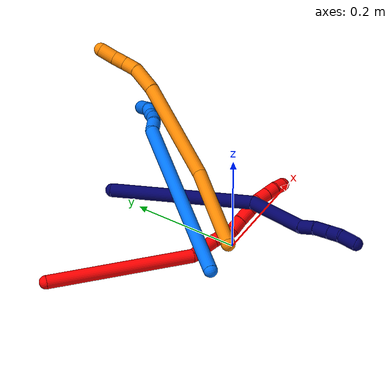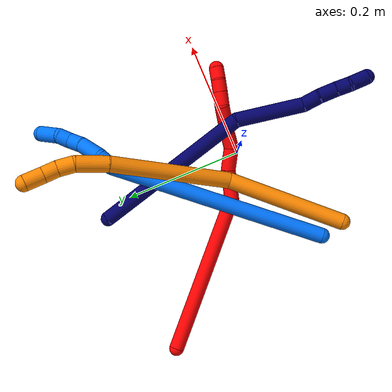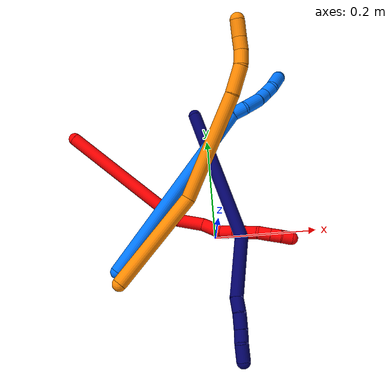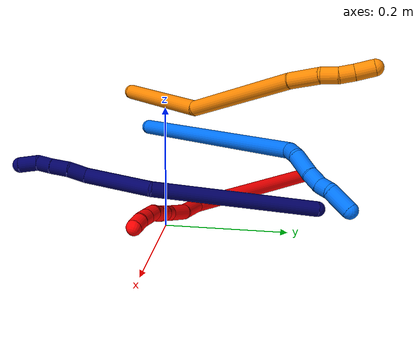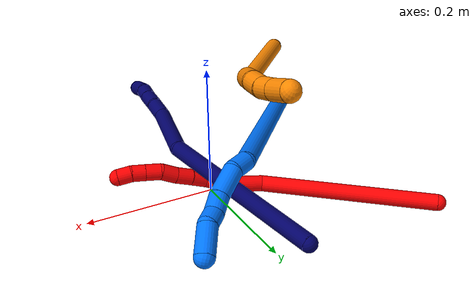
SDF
<sdf version="1.7">
 <world name="default">
  <model name="photoneo_s_sensor">
   <static>1</static>
   <pose>0 0 2 1.57079 1.57079 3.14159</pose>
   <link name="link">
    <inertial><mass>0.1</mass></inertial>
    <sensor name="sensor" type="depth">
     <update_rate>30</update_rate>
     <camera>
      <horizontal_fov>1.22</horizontal_fov>
      <image><width>1920</width><height>1200</height><format>B8G8R8</format></image>
      <clip><near>0.1</near><far>4</far></clip>
      <depth_camera><output>points</output></depth_camera>
     </camera>
     <plugin name="camera_plugin" filename="libgazebo_ros_depth_camera.so">
      <baseline>0.2</baseline>
      <alwaysOn>1</alwaysOn>
      <updateRate>0.0</updateRate>
      <cameraName>camera_ir</cameraName>
      <imageTopicName>/camera/color/image_raw</imageTopicName>
      <cameraInfoTopicName>/camera/color/camera_info</cameraInfoTopicName>
      <depthImageTopicName>/camera/depth/image_raw</depthImageTopicName>
      <depthImageCameraInfoTopicName>/camera/depth/camera_info</depthImageCameraInfoTopicName>
      <pointCloudTopicName>/camera/depth/points</pointCloudTopicName>
      <frameName>fr_optical</frameName>
      <pointCloudCutoff>0.1</pointCloudCutoff>
      <pointCloudCutoffMax>2.0</pointCloudCutoffMax>
      <distortionK1>0</distortionK1>
      <distortionK2>0</distortionK2>
      <distortionK3>0</distortionK3>
      <distortionT1>0</distortionT1>
      <distortionT2>0</distortionT2>
      <CxPrime>0</CxPrime>
      <Cx>0</Cx>
      <Cy>0</Cy>
      <focalLength>0</focalLength>
      <hackBaseline>0</hackBaseline>
     </plugin>
    </sensor>
   </link>
  </model>
  <model name="bin">
   <static>1</static>
   <link name="bottom">
    <collision name="collision-bottom">
     <pose>0 0 -0.01 0 -0 0</pose>
     <geometry><box><size>0.8 0.6 0.02</size></box></geometry>
     <surface>
      <friction><ode><mu>100</mu><mu2>100</mu2></ode></friction>
      <contact><collide_bitmask>65535</collide_bitmask></contact>
     </surface>
    </collision>
   </link>
   <link name="west_wall">
    <collision name="collision-west_wall">
     <pose>-0.41 0 0.1 0 -0 0</pose>
     <geometry><box><size>0.02 0.6 0.2</size></box></geometry>
     <surface>
      <friction><ode><mu>100</mu><mu2>100</mu2></ode></friction>
      <contact><collide_bitmask>65535</collide_bitmask></contact>
     </surface>
    </collision>
   </link>
   <link name="east_wall">
    <collision name="collision-east_wall">
     <pose>0.41 0 0.1 0 -0 0</pose>
     <geometry><box><size>0.02 0.6 0.2</size></box></geometry>
     <surface>
      <friction><ode><mu>100</mu><mu2>100</mu2></ode></friction>
      <contact><collide_bitmask>65535</collide_bitmask></contact>
     </surface>
    </collision>
   </link>
   <link name="south_wall">
    <collision name="collision-south_wall">
     <pose>0 -0.31 0.1 0 -0 0</pose>
     <geometry><box><size>0.8 0.02 0.2</size></box></geometry>
     <surface>
      <friction><ode><mu>100</mu><mu2>100</mu2></ode></friction>
      <contact><collide_bitmask>65535</collide_bitmask></contact>
     </surface>
    </collision>
   </link>
   <link name="north_wall">
    <collision name="collision-north_wall">
     <pose>0 0.31 0.1 0 -0 0</pose>
     <geometry><box><size>0.8 0.02 0.2</size></box></geometry>
     <surface>
      <friction><ode><mu>100</mu><mu2>100</mu2></ode></friction>
      <contact><collide_bitmask>65535</collide_bitmask></contact>
     </surface>
    </collision>
   </link>
  </model>
  <model name="2">
   <static>0</static>
   <link name="2">
    <collision name="collision-cylinder-e_1_1_4">
     <pose>0.047679 -0.09233 -0.086904 2.32593 0.359675 0.796586</pose>
     <geometry><cylinder><radius>0.0125</radius><length>0.270928</length></cylinder></geometry>
     <surface>
      <friction><ode><mu>1.16</mu><mu2>1.16</mu2><slip1>0</slip1><slip2>0</slip2></ode></friction>
      <contact><ode><kp>1e+06</kp><kd>1</kd><max_vel>0</max_vel><min_depth>0.001</min_depth></ode></contact>
     </surface>
    </collision>
    <visual name="visual-cylinder-e_1_1_4">
     <pose>0.047679 -0.09233 -0.086904 2.32593 0.359675 0.796586</pose>
     <geometry><cylinder><radius>0.0125</radius><length>0.270928</length></cylinder></geometry>
     <material><ambient>1 0 0 1</ambient></material>
    </visual>
    <collision name="collision-cylinder-e_2_4_5">
     <pose>0.112614 -0.193073 -0.190078 2.6644 0.755584 2.0419</pose>
     <geometry><cylinder><radius>0.0125</radius><length>0.050329</length></cylinder></geometry>
     <surface>
      <friction><ode><mu>1.16</mu><mu2>1.16</mu2><slip1>0</slip1><slip2>0</slip2></ode></friction>
      <contact><ode><kp>1e+06</kp><kd>1</kd><max_vel>0</max_vel><min_depth>0.001</min_depth></ode></contact>
     </surface>
    </collision>
    <visual name="visual-cylinder-e_2_4_5">
     <pose>0.112614 -0.193073 -0.190078 2.6644 0.755584 2.0419</pose>
     <geometry><cylinder><radius>0.0125</radius><length>0.050329</length></cylinder></geometry>
     <material><ambient>1 0 0 1</ambient></material>
    </visual>
    <collision name="collision-cylinder-e_3_5_6">
     <pose>0.142326 -0.212923 -0.216481 2.29581 0.683929 1.33835</pose>
     <geometry><cylinder><radius>0.0125</radius><length>0.039429</length></cylinder></geometry>
     <surface>
      <friction><ode><mu>1.16</mu><mu2>1.16</mu2><slip1>0</slip1><slip2>0</slip2></ode></friction>
      <contact><ode><kp>1e+06</kp><kd>1</kd><max_vel>0</max_vel><min_depth>0.001</min_depth></ode></contact>
     </surface>
    </collision>
    <visual name="visual-cylinder-e_3_5_6">
     <pose>0.142326 -0.212923 -0.216481 2.29581 0.683929 1.33835</pose>
     <geometry><cylinder><radius>0.0125</radius><length>0.039429</length></cylinder></geometry>
     <material><ambient>1 0 0 1</ambient></material>
    </visual>
    <collision name="collision-cylinder-e_4_6_7">
     <pose>0.165717 -0.227685 -0.231934 2.58296 1.04996 2.222</pose>
     <geometry><cylinder><radius>0.0125</radius><length>0.025211</length></cylinder></geometry>
     <surface>
      <friction><ode><mu>1.16</mu><mu2>1.16</mu2><slip1>0</slip1><slip2>0</slip2></ode></friction>
      <contact><ode><kp>1e+06</kp><kd>1</kd><max_vel>0</max_vel><min_depth>0.001</min_depth></ode></contact>
     </surface>
    </collision>
    <visual name="visual-cylinder-e_4_6_7">
     <pose>0.165717 -0.227685 -0.231934 2.58296 1.04996 2.222</pose>
     <geometry><cylinder><radius>0.0125</radius><length>0.025211</length></cylinder></geometry>
     <material><ambient>1 0 0 1</ambient></material>
    </visual>
    <collision name="collision-cylinder-e_5_7_8">
     <pose>0.187007 -0.234868 -0.243206 2.56662 0.97017 2.11915</pose>
     <geometry><cylinder><radius>0.0125</radius><length>0.025105</length></cylinder></geometry>
     <surface>
      <friction><ode><mu>1.16</mu><mu2>1.16</mu2><slip1>0</slip1><slip2>0</slip2></ode></friction>
      <contact><ode><kp>1e+06</kp><kd>1</kd><max_vel>0</max_vel><min_depth>0.001</min_depth></ode></contact>
     </surface>
    </collision>
    <visual name="visual-cylinder-e_5_7_8">
     <pose>0.187007 -0.234868 -0.243206 2.56662 0.97017 2.11915</pose>
     <geometry><cylinder><radius>0.0125</radius><length>0.025105</length></cylinder></geometry>
     <material><ambient>1 0 0 1</ambient></material>
    </visual>
    <collision name="collision-cylinder-e_6_8_9">
     <pose>0.208031 -0.242859 -0.253552 2.38653 1.05627 1.94764</pose>
     <geometry><cylinder><radius>0.0125</radius><length>0.024512</length></cylinder></geometry>
     <surface>
      <friction><ode><mu>1.16</mu><mu2>1.16</mu2><slip1>0</slip1><slip2>0</slip2></ode></friction>
      <contact><ode><kp>1e+06</kp><kd>1</kd><max_vel>0</max_vel><min_depth>0.001</min_depth></ode></contact>
     </surface>
    </collision>
    <visual name="visual-cylinder-e_6_8_9">
     <pose>0.208031 -0.242859 -0.253552 2.38653 1.05627 1.94764</pose>
     <geometry><cylinder><radius>0.0125</radius><length>0.024512</length></cylinder></geometry>
     <material><ambient>1 0 0 1</ambient></material>
    </visual>
    <collision name="collision-cylinder-e_7_9_10">
     <pose>0.226522 -0.250665 -0.265762 2.70253 0.735863 2.09218</pose>
     <geometry><cylinder><radius>0.0125</radius><length>0.023305</length></cylinder></geometry>
     <surface>
      <friction><ode><mu>1.16</mu><mu2>1.16</mu2><slip1>0</slip1><slip2>0</slip2></ode></friction>
      <contact><ode><kp>1e+06</kp><kd>1</kd><max_vel>0</max_vel><min_depth>0.001</min_depth></ode></contact>
     </surface>
    </collision>
    <visual name="visual-cylinder-e_7_9_10">
     <pose>0.226522 -0.250665 -0.265762 2.70253 0.735863 2.09218</pose>
     <geometry><cylinder><radius>0.0125</radius><length>0.023305</length></cylinder></geometry>
     <material><ambient>1 0 0 1</ambient></material>
    </visual>
    <collision name="collision-cylinder-e_8_10_11">
     <pose>0.24123 -0.257346 -0.280517 2.73222 0.738773 2.15722</pose>
     <geometry><cylinder><radius>0.0125</radius><length>0.020454</length></cylinder></geometry>
     <surface>
      <friction><ode><mu>1.16</mu><mu2>1.16</mu2><slip1>0</slip1><slip2>0</slip2></ode></friction>
      <contact><ode><kp>1e+06</kp><kd>1</kd><max_vel>0</max_vel><min_depth>0.001</min_depth></ode></contact>
     </surface>
    </collision>
    <visual name="visual-cylinder-e_8_10_11">
     <pose>0.24123 -0.257346 -0.280517 2.73222 0.738773 2.15722</pose>
     <geometry><cylinder><radius>0.0125</radius><length>0.020454</length></cylinder></geometry>
     <material><ambient>1 0 0 1</ambient></material>
    </visual>
    <collision name="collision-cylinder-e_9_11_2">
     <pose>0.253608 -0.262601 -0.29595 2.88318 0.558485 2.29066</pose>
     <geometry><cylinder><radius>0.0125</radius><length>0.020727</length></cylinder></geometry>
     <surface>
      <friction><ode><mu>1.16</mu><mu2>1.16</mu2><slip1>0</slip1><slip2>0</slip2></ode></friction>
      <contact><ode><kp>1e+06</kp><kd>1</kd><max_vel>0</max_vel><min_depth>0.001</min_depth></ode></contact>
     </surface>
    </collision>
    <visual name="visual-cylinder-e_9_11_2">
     <pose>0.253608 -0.262601 -0.29595 2.88318 0.558485 2.29066</pose>
     <geometry><cylinder><radius>0.0125</radius><length>0.020727</length></cylinder></geometry>
     <material><ambient>1 0 0 1</ambient></material>
    </visual>
    <collision name="collision-sphere-2">
     <pose>0.2591 -0.264847 -0.304447 0 -0 0</pose>
     <geometry><sphere><radius>0.0125</radius></sphere></geometry>
     <surface>
      <friction><ode><mu>1.16</mu><mu2>1.16</mu2><slip1>0</slip1><slip2>0</slip2></ode></friction>
      <contact><ode><kp>1e+06</kp><kd>1</kd><max_vel>0</max_vel><min_depth>0.001</min_depth></ode></contact>
     </surface>
    </collision>
    <visual name="visual-sphere-2">
     <pose>0.2591 -0.264847 -0.304447 0 -0 0</pose>
     <geometry><sphere><radius>0.0125</radius></sphere></geometry>
     <material><ambient>1 0 0 1</ambient></material>
    </visual>
    <collision name="collision-sphere-11">
     <pose>0.248117 -0.260355 -0.287453 0 -0 0</pose>
     <geometry><sphere><radius>0.0125</radius></sphere></geometry>
     <surface>
      <friction><ode><mu>1.16</mu><mu2>1.16</mu2><slip1>0</slip1><slip2>0</slip2></ode></friction>
      <contact><ode><kp>1e+06</kp><kd>1</kd><max_vel>0</max_vel><min_depth>0.001</min_depth></ode></contact>
     </surface>
    </collision>
    <visual name="visual-sphere-11">
     <pose>0.248117 -0.260355 -0.287453 0 -0 0</pose>
     <geometry><sphere><radius>0.0125</radius></sphere></geometry>
     <material><ambient>1 0 0 1</ambient></material>
    </visual>
    <collision name="collision-sphere-10">
     <pose>0.234343 -0.254336 -0.273581 0 -0 0</pose>
     <geometry><sphere><radius>0.0125</radius></sphere></geometry>
     <surface>
      <friction><ode><mu>1.16</mu><mu2>1.16</mu2><slip1>0</slip1><slip2>0</slip2></ode></friction>
      <contact><ode><kp>1e+06</kp><kd>1</kd><max_vel>0</max_vel><min_depth>0.001</min_depth></ode></contact>
     </surface>
    </collision>
    <visual name="visual-sphere-10">
     <pose>0.234343 -0.254336 -0.273581 0 -0 0</pose>
     <geometry><sphere><radius>0.0125</radius></sphere></geometry>
     <material><ambient>1 0 0 1</ambient></material>
    </visual>
    <collision name="collision-sphere-9">
     <pose>0.2187 -0.246993 -0.257944 0 -0 0</pose>
     <geometry><sphere><radius>0.0125</radius></sphere></geometry>
     <surface>
      <friction><ode><mu>1.16</mu><mu2>1.16</mu2><slip1>0</slip1><slip2>0</slip2></ode></friction>
      <contact><ode><kp>1e+06</kp><kd>1</kd><max_vel>0</max_vel><min_depth>0.001</min_depth></ode></contact>
     </surface>
    </collision>
    <visual name="visual-sphere-9">
     <pose>0.2187 -0.246993 -0.257944 0 -0 0</pose>
     <geometry><sphere><radius>0.0125</radius></sphere></geometry>
     <material><ambient>1 0 0 1</ambient></material>
    </visual>
    <collision name="collision-sphere-4">
     <pose>0.095359 -0.184661 -0.173808 0 -0 0</pose>
     <geometry><sphere><radius>0.0125</radius></sphere></geometry>
     <surface>
      <friction><ode><mu>1.16</mu><mu2>1.16</mu2><slip1>0</slip1><slip2>0</slip2></ode></friction>
      <contact><ode><kp>1e+06</kp><kd>1</kd><max_vel>0</max_vel><min_depth>0.001</min_depth></ode></contact>
     </surface>
    </collision>
    <visual name="visual-sphere-4">
     <pose>0.095359 -0.184661 -0.173808 0 -0 0</pose>
     <geometry><sphere><radius>0.0125</radius></sphere></geometry>
     <material><ambient>1 0 0 1</ambient></material>
    </visual>
    <collision name="collision-sphere-1">
     <geometry><sphere><radius>0.0125</radius></sphere></geometry>
     <surface>
      <friction><ode><mu>1.16</mu><mu2>1.16</mu2><slip1>0</slip1><slip2>0</slip2></ode></friction>
      <contact><ode><kp>1e+06</kp><kd>1</kd><max_vel>0</max_vel><min_depth>0.001</min_depth></ode></contact>
     </surface>
    </collision>
    <visual name="visual-sphere-1">
     <geometry><sphere><radius>0.0125</radius></sphere></geometry>
     <material><ambient>1 0 0 1</ambient></material>
    </visual>
    <collision name="collision-sphere-8">
     <pose>0.197362 -0.238726 -0.24916 0 -0 0</pose>
     <geometry><sphere><radius>0.0125</radius></sphere></geometry>
     <surface>
      <friction><ode><mu>1.16</mu><mu2>1.16</mu2><slip1>0</slip1><slip2>0</slip2></ode></friction>
      <contact><ode><kp>1e+06</kp><kd>1</kd><max_vel>0</max_vel><min_depth>0.001</min_depth></ode></contact>
     </surface>
    </collision>
    <visual name="visual-sphere-8">
     <pose>0.197362 -0.238726 -0.24916 0 -0 0</pose>
     <geometry><sphere><radius>0.0125</radius></sphere></geometry>
     <material><ambient>1 0 0 1</ambient></material>
    </visual>
    <collision name="collision-sphere-5">
     <pose>0.12987 -0.201486 -0.206348 0 -0 0</pose>
     <geometry><sphere><radius>0.0125</radius></sphere></geometry>
     <surface>
      <friction><ode><mu>1.16</mu><mu2>1.16</mu2><slip1>0</slip1><slip2>0</slip2></ode></friction>
      <contact><ode><kp>1e+06</kp><kd>1</kd><max_vel>0</max_vel><min_depth>0.001</min_depth></ode></contact>
     </surface>
    </collision>
    <visual name="visual-sphere-5">
     <pose>0.12987 -0.201486 -0.206348 0 -0 0</pose>
     <geometry><sphere><radius>0.0125</radius></sphere></geometry>
     <material><ambient>1 0 0 1</ambient></material>
    </visual>
    <collision name="collision-sphere-6">
     <pose>0.154783 -0.224361 -0.226615 0 -0 0</pose>
     <geometry><sphere><radius>0.0125</radius></sphere></geometry>
     <surface>
      <friction><ode><mu>1.16</mu><mu2>1.16</mu2><slip1>0</slip1><slip2>0</slip2></ode></friction>
      <contact><ode><kp>1e+06</kp><kd>1</kd><max_vel>0</max_vel><min_depth>0.001</min_depth></ode></contact>
     </surface>
    </collision>
    <visual name="visual-sphere-6">
     <pose>0.154783 -0.224361 -0.226615 0 -0 0</pose>
     <geometry><sphere><radius>0.0125</radius></sphere></geometry>
     <material><ambient>1 0 0 1</ambient></material>
    </visual>
    <collision name="collision-sphere-7">
     <pose>0.176651 -0.23101 -0.237253 0 -0 0</pose>
     <geometry><sphere><radius>0.0125</radius></sphere></geometry>
     <surface>
      <friction><ode><mu>1.16</mu><mu2>1.16</mu2><slip1>0</slip1><slip2>0</slip2></ode></friction>
      <contact><ode><kp>1e+06</kp><kd>1</kd><max_vel>0</max_vel><min_depth>0.001</min_depth></ode></contact>
     </surface>
    </collision>
    <visual name="visual-sphere-7">
     <pose>0.176651 -0.23101 -0.237253 0 -0 0</pose>
     <geometry><sphere><radius>0.0125</radius></sphere></geometry>
     <material><ambient>1 0 0 1</ambient></material>
    </visual>
    <inertial>
     <pose>0.107278 -0.154531 -0.155761 0 -0 0</pose>
     <mass>0.5</mass>
     <inertia>
      <ixx>0.00224</ixx>
      <ixy>0</ixy>
      <ixz>0</ixz>
      <iyy>0.000641</iyy>
      <iyz>0</iyz>
      <izz>0.000516</izz>
     </inertia>
    </inertial>
   </link>
   <pose>-0.268617 0.224963 0.013084 -0.43029 -0.694621 0.33839</pose>
  </model>
  <model name="7">
   <static>0</static>
   <link name="7">
    <collision name="collision-cylinder-e_1_1_4">
     <pose>-0.003607 -0.127611 -0.048316 1.93274 -0.026429 -0.038263</pose>
     <geometry><cylinder><radius>0.0125</radius><length>0.272999</length></cylinder></geometry>
     <surface>
      <friction><ode><mu>1.16</mu><mu2>1.16</mu2><slip1>0</slip1><slip2>0</slip2></ode></friction>
      <contact><ode><kp>1e+06</kp><kd>1</kd><max_vel>0</max_vel><min_depth>0.001</min_depth></ode></contact>
     </surface>
    </collision>
    <visual name="visual-cylinder-e_1_1_4">
     <pose>-0.003607 -0.127611 -0.048316 1.93274 -0.026429 -0.038263</pose>
     <geometry><cylinder><radius>0.0125</radius><length>0.272999</length></cylinder></geometry>
     <material><ambient>0.003922 0 0.403922 1</ambient></material>
    </visual>
    <collision name="collision-cylinder-e_2_4_5">
     <pose>0.011721 -0.308112 -0.103712 1.70388 0.340986 0.388533</pose>
     <geometry><cylinder><radius>0.0125</radius><length>0.113241</length></cylinder></geometry>
     <surface>
      <friction><ode><mu>1.16</mu><mu2>1.16</mu2><slip1>0</slip1><slip2>0</slip2></ode></friction>
      <contact><ode><kp>1e+06</kp><kd>1</kd><max_vel>0</max_vel><min_depth>0.001</min_depth></ode></contact>
     </surface>
    </collision>
    <visual name="visual-cylinder-e_2_4_5">
     <pose>0.011721 -0.308112 -0.103712 1.70388 0.340986 0.388533</pose>
     <geometry><cylinder><radius>0.0125</radius><length>0.113241</length></cylinder></geometry>
     <material><ambient>0.003922 0 0.403922 1</ambient></material>
    </visual>
    <collision name="collision-cylinder-e_3_5_6">
     <pose>0.033586 -0.37424 -0.117072 2.01369 0.197365 0.310554</pose>
     <geometry><cylinder><radius>0.0125</radius><length>0.029886</length></cylinder></geometry>
     <surface>
      <friction><ode><mu>1.16</mu><mu2>1.16</mu2><slip1>0</slip1><slip2>0</slip2></ode></friction>
      <contact><ode><kp>1e+06</kp><kd>1</kd><max_vel>0</max_vel><min_depth>0.001</min_depth></ode></contact>
     </surface>
    </collision>
    <visual name="visual-cylinder-e_3_5_6">
     <pose>0.033586 -0.37424 -0.117072 2.01369 0.197365 0.310554</pose>
     <geometry><cylinder><radius>0.0125</radius><length>0.029886</length></cylinder></geometry>
     <material><ambient>0.003922 0 0.403922 1</ambient></material>
    </visual>
    <collision name="collision-cylinder-e_4_6_7">
     <pose>0.039547 -0.401564 -0.126826 1.81262 0.205966 0.26236</pose>
     <geometry><cylinder><radius>0.0125</radius><length>0.02964</length></cylinder></geometry>
     <surface>
      <friction><ode><mu>1.16</mu><mu2>1.16</mu2><slip1>0</slip1><slip2>0</slip2></ode></friction>
      <contact><ode><kp>1e+06</kp><kd>1</kd><max_vel>0</max_vel><min_depth>0.001</min_depth></ode></contact>
     </surface>
    </collision>
    <visual name="visual-cylinder-e_4_6_7">
     <pose>0.039547 -0.401564 -0.126826 1.81262 0.205966 0.26236</pose>
     <geometry><cylinder><radius>0.0125</radius><length>0.02964</length></cylinder></geometry>
     <material><ambient>0.003922 0 0.403922 1</ambient></material>
    </visual>
    <collision name="collision-cylinder-e_5_7_8">
     <pose>0.045604 -0.426234 -0.133173 1.83582 0.269236 0.350558</pose>
     <geometry><cylinder><radius>0.0125</radius><length>0.022758</length></cylinder></geometry>
     <surface>
      <friction><ode><mu>1.16</mu><mu2>1.16</mu2><slip1>0</slip1><slip2>0</slip2></ode></friction>
      <contact><ode><kp>1e+06</kp><kd>1</kd><max_vel>0</max_vel><min_depth>0.001</min_depth></ode></contact>
     </surface>
    </collision>
    <visual name="visual-cylinder-e_5_7_8">
     <pose>0.045604 -0.426234 -0.133173 1.83582 0.269236 0.350558</pose>
     <geometry><cylinder><radius>0.0125</radius><length>0.022758</length></cylinder></geometry>
     <material><ambient>0.003922 0 0.403922 1</ambient></material>
    </visual>
    <collision name="collision-cylinder-e_6_8_2">
     <pose>0.049389 -0.452537 -0.135764 1.55285 0.048173 0.047316</pose>
     <geometry><cylinder><radius>0.0125</radius><length>0.031476</length></cylinder></geometry>
     <surface>
      <friction><ode><mu>1.16</mu><mu2>1.16</mu2><slip1>0</slip1><slip2>0</slip2></ode></friction>
      <contact><ode><kp>1e+06</kp><kd>1</kd><max_vel>0</max_vel><min_depth>0.001</min_depth></ode></contact>
     </surface>
    </collision>
    <visual name="visual-cylinder-e_6_8_2">
     <pose>0.049389 -0.452537 -0.135764 1.55285 0.048173 0.047316</pose>
     <geometry><cylinder><radius>0.0125</radius><length>0.031476</length></cylinder></geometry>
     <material><ambient>0.003922 0 0.403922 1</ambient></material>
    </visual>
    <collision name="collision-sphere-2">
     <pose>0.050147 -0.468254 -0.135482 0 -0 0</pose>
     <geometry><sphere><radius>0.0125</radius></sphere></geometry>
     <surface>
      <friction><ode><mu>1.16</mu><mu2>1.16</mu2><slip1>0</slip1><slip2>0</slip2></ode></friction>
      <contact><ode><kp>1e+06</kp><kd>1</kd><max_vel>0</max_vel><min_depth>0.001</min_depth></ode></contact>
     </surface>
    </collision>
    <visual name="visual-sphere-2">
     <pose>0.050147 -0.468254 -0.135482 0 -0 0</pose>
     <geometry><sphere><radius>0.0125</radius></sphere></geometry>
     <material><ambient>0.003922 0 0.403922 1</ambient></material>
    </visual>
    <collision name="collision-sphere-4">
     <pose>-0.007214 -0.255223 -0.096632 0 -0 0</pose>
     <geometry><sphere><radius>0.0125</radius></sphere></geometry>
     <surface>
      <friction><ode><mu>1.16</mu><mu2>1.16</mu2><slip1>0</slip1><slip2>0</slip2></ode></friction>
      <contact><ode><kp>1e+06</kp><kd>1</kd><max_vel>0</max_vel><min_depth>0.001</min_depth></ode></contact>
     </surface>
    </collision>
    <visual name="visual-sphere-4">
     <pose>-0.007214 -0.255223 -0.096632 0 -0 0</pose>
     <geometry><sphere><radius>0.0125</radius></sphere></geometry>
     <material><ambient>0.003922 0 0.403922 1</ambient></material>
    </visual>
    <collision name="collision-sphere-1">
     <geometry><sphere><radius>0.0125</radius></sphere></geometry>
     <surface>
      <friction><ode><mu>1.16</mu><mu2>1.16</mu2><slip1>0</slip1><slip2>0</slip2></ode></friction>
      <contact><ode><kp>1e+06</kp><kd>1</kd><max_vel>0</max_vel><min_depth>0.001</min_depth></ode></contact>
     </surface>
    </collision>
    <visual name="visual-sphere-1">
     <geometry><sphere><radius>0.0125</radius></sphere></geometry>
     <material><ambient>0.003922 0 0.403922 1</ambient></material>
    </visual>
    <collision name="collision-sphere-8">
     <pose>0.048631 -0.43682 -0.136047 0 -0 0</pose>
     <geometry><sphere><radius>0.0125</radius></sphere></geometry>
     <surface>
      <friction><ode><mu>1.16</mu><mu2>1.16</mu2><slip1>0</slip1><slip2>0</slip2></ode></friction>
      <contact><ode><kp>1e+06</kp><kd>1</kd><max_vel>0</max_vel><min_depth>0.001</min_depth></ode></contact>
     </surface>
    </collision>
    <visual name="visual-sphere-8">
     <pose>0.048631 -0.43682 -0.136047 0 -0 0</pose>
     <geometry><sphere><radius>0.0125</radius></sphere></geometry>
     <material><ambient>0.003922 0 0.403922 1</ambient></material>
    </visual>
    <collision name="collision-sphere-5">
     <pose>0.030656 -0.361001 -0.110793 0 -0 0</pose>
     <geometry><sphere><radius>0.0125</radius></sphere></geometry>
     <surface>
      <friction><ode><mu>1.16</mu><mu2>1.16</mu2><slip1>0</slip1><slip2>0</slip2></ode></friction>
      <contact><ode><kp>1e+06</kp><kd>1</kd><max_vel>0</max_vel><min_depth>0.001</min_depth></ode></contact>
     </surface>
    </collision>
    <visual name="visual-sphere-5">
     <pose>0.030656 -0.361001 -0.110793 0 -0 0</pose>
     <geometry><sphere><radius>0.0125</radius></sphere></geometry>
     <material><ambient>0.003922 0 0.403922 1</ambient></material>
    </visual>
    <collision name="collision-sphere-6">
     <pose>0.036516 -0.387479 -0.123352 0 -0 0</pose>
     <geometry><sphere><radius>0.0125</radius></sphere></geometry>
     <surface>
      <friction><ode><mu>1.16</mu><mu2>1.16</mu2><slip1>0</slip1><slip2>0</slip2></ode></friction>
      <contact><ode><kp>1e+06</kp><kd>1</kd><max_vel>0</max_vel><min_depth>0.001</min_depth></ode></contact>
     </surface>
    </collision>
    <visual name="visual-sphere-6">
     <pose>0.036516 -0.387479 -0.123352 0 -0 0</pose>
     <geometry><sphere><radius>0.0125</radius></sphere></geometry>
     <material><ambient>0.003922 0 0.403922 1</ambient></material>
    </visual>
    <collision name="collision-sphere-7">
     <pose>0.042578 -0.415649 -0.1303 0 -0 0</pose>
     <geometry><sphere><radius>0.0125</radius></sphere></geometry>
     <surface>
      <friction><ode><mu>1.16</mu><mu2>1.16</mu2><slip1>0</slip1><slip2>0</slip2></ode></friction>
      <contact><ode><kp>1e+06</kp><kd>1</kd><max_vel>0</max_vel><min_depth>0.001</min_depth></ode></contact>
     </surface>
    </collision>
    <visual name="visual-sphere-7">
     <pose>0.042578 -0.415649 -0.1303 0 -0 0</pose>
     <geometry><sphere><radius>0.0125</radius></sphere></geometry>
     <material><ambient>0.003922 0 0.403922 1</ambient></material>
    </visual>
    <inertial>
     <pose>0.010222 -0.23352 -0.078994 0 -0 0</pose>
     <mass>0.5</mass>
     <inertia>
      <ixx>0.001812</ixx>
      <ixy>0</ixy>
      <ixz>0</ixz>
      <iyy>-0.000658</iyy>
      <iyz>0</iyz>
      <izz>0.001715</izz>
     </inertia>
    </inertial>
   </link>
   <pose>-0.021129 0.246187 0.035967 2.96012 -0.404952 -2.98997</pose>
  </model>
  <model name="14">
   <static>0</static>
   <link name="14">
    <collision name="collision-cylinder-e_1_1_4">
     <pose>0.118103 0.129926 -0.002733 -1.59183 0.737655 -0.751909</pose>
     <geometry><cylinder><radius>0.0125</radius><length>0.351207</length></cylinder></geometry>
     <surface>
      <friction><ode><mu>1.16</mu><mu2>1.16</mu2><slip1>0</slip1><slip2>0</slip2></ode></friction>
      <contact><ode><kp>1e+06</kp><kd>1</kd><max_vel>0</max_vel><min_depth>0.001</min_depth></ode></contact>
     </surface>
    </collision>
    <visual name="visual-cylinder-e_1_1_4">
     <pose>0.118103 0.129926 -0.002733 -1.59183 0.737655 -0.751909</pose>
     <geometry><cylinder><radius>0.0125</radius><length>0.351207</length></cylinder></geometry>
     <material><ambient>0 0.462745 1 1</ambient></material>
    </visual>
    <collision name="collision-cylinder-e_2_4_5">
     <pose>0.246066 0.266486 -0.000905 -0.968561 0.886102 -0.48925</pose>
     <geometry><cylinder><radius>0.0125</radius><length>0.025457</length></cylinder></geometry>
     <surface>
      <friction><ode><mu>1.16</mu><mu2>1.16</mu2><slip1>0</slip1><slip2>0</slip2></ode></friction>
      <contact><ode><kp>1e+06</kp><kd>1</kd><max_vel>0</max_vel><min_depth>0.001</min_depth></ode></contact>
     </surface>
    </collision>
    <visual name="visual-cylinder-e_2_4_5">
     <pose>0.246066 0.266486 -0.000905 -0.968561 0.886102 -0.48925</pose>
     <geometry><cylinder><radius>0.0125</radius><length>0.025457</length></cylinder></geometry>
     <material><ambient>0 0.462745 1 1</ambient></material>
    </visual>
    <collision name="collision-cylinder-e_3_5_6">
     <pose>0.274986 0.278067 0.00612 -1.10862 1.2886 -0.870613</pose>
     <geometry><cylinder><radius>0.0125</radius><length>0.039692</length></cylinder></geometry>
     <surface>
      <friction><ode><mu>1.16</mu><mu2>1.16</mu2><slip1>0</slip1><slip2>0</slip2></ode></friction>
      <contact><ode><kp>1e+06</kp><kd>1</kd><max_vel>0</max_vel><min_depth>0.001</min_depth></ode></contact>
     </surface>
    </collision>
    <visual name="visual-cylinder-e_3_5_6">
     <pose>0.274986 0.278067 0.00612 -1.10862 1.2886 -0.870613</pose>
     <geometry><cylinder><radius>0.0125</radius><length>0.039692</length></cylinder></geometry>
     <material><ambient>0 0.462745 1 1</ambient></material>
    </visual>
    <collision name="collision-cylinder-e_4_6_7">
     <pose>0.305704 0.28607 0.007908 -1.7885 1.30839 -1.52479</pose>
     <geometry><cylinder><radius>0.0125</radius><length>0.024138</length></cylinder></geometry>
     <surface>
      <friction><ode><mu>1.16</mu><mu2>1.16</mu2><slip1>0</slip1><slip2>0</slip2></ode></friction>
      <contact><ode><kp>1e+06</kp><kd>1</kd><max_vel>0</max_vel><min_depth>0.001</min_depth></ode></contact>
     </surface>
    </collision>
    <visual name="visual-cylinder-e_4_6_7">
     <pose>0.305704 0.28607 0.007908 -1.7885 1.30839 -1.52479</pose>
     <geometry><cylinder><radius>0.0125</radius><length>0.024138</length></cylinder></geometry>
     <material><ambient>0 0.462745 1 1</ambient></material>
    </visual>
    <collision name="collision-cylinder-e_5_7_8">
     <pose>0.326003 0.294924 0.00768 -1.49351 0.978614 -0.915832</pose>
     <geometry><cylinder><radius>0.0125</radius><length>0.020834</length></cylinder></geometry>
     <surface>
      <friction><ode><mu>1.16</mu><mu2>1.16</mu2><slip1>0</slip1><slip2>0</slip2></ode></friction>
      <contact><ode><kp>1e+06</kp><kd>1</kd><max_vel>0</max_vel><min_depth>0.001</min_depth></ode></contact>
     </surface>
    </collision>
    <visual name="visual-cylinder-e_5_7_8">
     <pose>0.326003 0.294924 0.00768 -1.49351 0.978614 -0.915832</pose>
     <geometry><cylinder><radius>0.0125</radius><length>0.020834</length></cylinder></geometry>
     <material><ambient>0 0.462745 1 1</ambient></material>
    </visual>
    <collision name="collision-cylinder-e_6_8_2">
     <pose>0.353114 0.304315 0.003671 -2.46308 1.27013 -2.24835</pose>
     <geometry><cylinder><radius>0.0125</radius><length>0.038671</length></cylinder></geometry>
     <surface>
      <friction><ode><mu>1.16</mu><mu2>1.16</mu2><slip1>0</slip1><slip2>0</slip2></ode></friction>
      <contact><ode><kp>1e+06</kp><kd>1</kd><max_vel>0</max_vel><min_depth>0.001</min_depth></ode></contact>
     </surface>
    </collision>
    <visual name="visual-cylinder-e_6_8_2">
     <pose>0.353114 0.304315 0.003671 -2.46308 1.27013 -2.24835</pose>
     <geometry><cylinder><radius>0.0125</radius><length>0.038671</length></cylinder></geometry>
     <material><ambient>0 0.462745 1 1</ambient></material>
    </visual>
    <collision name="collision-sphere-2">
     <pose>0.371583 0.307909 -0.000787 0 -0 0</pose>
     <geometry><sphere><radius>0.0125</radius></sphere></geometry>
     <surface>
      <friction><ode><mu>1.16</mu><mu2>1.16</mu2><slip1>0</slip1><slip2>0</slip2></ode></friction>
      <contact><ode><kp>1e+06</kp><kd>1</kd><max_vel>0</max_vel><min_depth>0.001</min_depth></ode></contact>
     </surface>
    </collision>
    <visual name="visual-sphere-2">
     <pose>0.371583 0.307909 -0.000787 0 -0 0</pose>
     <geometry><sphere><radius>0.0125</radius></sphere></geometry>
     <material><ambient>0 0.462745 1 1</ambient></material>
    </visual>
    <collision name="collision-sphere-4">
     <pose>0.236206 0.259852 -0.005465 0 -0 0</pose>
     <geometry><sphere><radius>0.0125</radius></sphere></geometry>
     <surface>
      <friction><ode><mu>1.16</mu><mu2>1.16</mu2><slip1>0</slip1><slip2>0</slip2></ode></friction>
      <contact><ode><kp>1e+06</kp><kd>1</kd><max_vel>0</max_vel><min_depth>0.001</min_depth></ode></contact>
     </surface>
    </collision>
    <visual name="visual-sphere-4">
     <pose>0.236206 0.259852 -0.005465 0 -0 0</pose>
     <geometry><sphere><radius>0.0125</radius></sphere></geometry>
     <material><ambient>0 0.462745 1 1</ambient></material>
    </visual>
    <collision name="collision-sphere-1">
     <geometry><sphere><radius>0.0125</radius></sphere></geometry>
     <surface>
      <friction><ode><mu>1.16</mu><mu2>1.16</mu2><slip1>0</slip1><slip2>0</slip2></ode></friction>
      <contact><ode><kp>1e+06</kp><kd>1</kd><max_vel>0</max_vel><min_depth>0.001</min_depth></ode></contact>
     </surface>
    </collision>
    <visual name="visual-sphere-1">
     <geometry><sphere><radius>0.0125</radius></sphere></geometry>
     <material><ambient>0 0.462745 1 1</ambient></material>
    </visual>
    <collision name="collision-sphere-8">
     <pose>0.334646 0.300721 0.008129 0 -0 0</pose>
     <geometry><sphere><radius>0.0125</radius></sphere></geometry>
     <surface>
      <friction><ode><mu>1.16</mu><mu2>1.16</mu2><slip1>0</slip1><slip2>0</slip2></ode></friction>
      <contact><ode><kp>1e+06</kp><kd>1</kd><max_vel>0</max_vel><min_depth>0.001</min_depth></ode></contact>
     </surface>
    </collision>
    <visual name="visual-sphere-8">
     <pose>0.334646 0.300721 0.008129 0 -0 0</pose>
     <geometry><sphere><radius>0.0125</radius></sphere></geometry>
     <material><ambient>0 0.462745 1 1</ambient></material>
    </visual>
    <collision name="collision-sphere-5">
     <pose>0.255925 0.27312 0.003655 0 -0 0</pose>
     <geometry><sphere><radius>0.0125</radius></sphere></geometry>
     <surface>
      <friction><ode><mu>1.16</mu><mu2>1.16</mu2><slip1>0</slip1><slip2>0</slip2></ode></friction>
      <contact><ode><kp>1e+06</kp><kd>1</kd><max_vel>0</max_vel><min_depth>0.001</min_depth></ode></contact>
     </surface>
    </collision>
    <visual name="visual-sphere-5">
     <pose>0.255925 0.27312 0.003655 0 -0 0</pose>
     <geometry><sphere><radius>0.0125</radius></sphere></geometry>
     <material><ambient>0 0.462745 1 1</ambient></material>
    </visual>
    <collision name="collision-sphere-6">
     <pose>0.294048 0.283013 0.008584 0 -0 0</pose>
     <geometry><sphere><radius>0.0125</radius></sphere></geometry>
     <surface>
      <friction><ode><mu>1.16</mu><mu2>1.16</mu2><slip1>0</slip1><slip2>0</slip2></ode></friction>
      <contact><ode><kp>1e+06</kp><kd>1</kd><max_vel>0</max_vel><min_depth>0.001</min_depth></ode></contact>
     </surface>
    </collision>
    <visual name="visual-sphere-6">
     <pose>0.294048 0.283013 0.008584 0 -0 0</pose>
     <geometry><sphere><radius>0.0125</radius></sphere></geometry>
     <material><ambient>0 0.462745 1 1</ambient></material>
    </visual>
    <collision name="collision-sphere-7">
     <pose>0.31736 0.289127 0.007231 0 -0 0</pose>
     <geometry><sphere><radius>0.0125</radius></sphere></geometry>
     <surface>
      <friction><ode><mu>1.16</mu><mu2>1.16</mu2><slip1>0</slip1><slip2>0</slip2></ode></friction>
      <contact><ode><kp>1e+06</kp><kd>1</kd><max_vel>0</max_vel><min_depth>0.001</min_depth></ode></contact>
     </surface>
    </collision>
    <visual name="visual-sphere-7">
     <pose>0.31736 0.289127 0.007231 0 -0 0</pose>
     <geometry><sphere><radius>0.0125</radius></sphere></geometry>
     <material><ambient>0 0.462745 1 1</ambient></material>
    </visual>
    <inertial>
     <pose>0.172968 0.17654 -0.000494 0 -0 0</pose>
     <mass>0.5</mass>
     <inertia>
      <ixx>0.000153</ixx>
      <ixy>0</ixy>
      <ixz>0</ixz>
      <iyy>-0.000186</iyy>
      <iyz>0</iyz>
      <izz>-0.005142</izz>
     </inertia>
    </inertial>
   </link>
   <pose>-0.18289 -0.065605 0.118347 1.33299 0.719029 0.669924</pose>
  </model>
  <model name="19">
   <static>0</static>
   <link name="19">
    <collision name="collision-cylinder-e_1_1_4">
     <pose>0.051693 0.058335 0.048558 -0.876608 0.597907 -0.286919</pose>
     <geometry><cylinder><radius>0.0125</radius><length>0.183663</length></cylinder></geometry>
     <surface>
      <friction><ode><mu>1.16</mu><mu2>1.16</mu2><slip1>0</slip1><slip2>0</slip2></ode></friction>
      <contact><ode><kp>1e+06</kp><kd>1</kd><max_vel>0</max_vel><min_depth>0.001</min_depth></ode></contact>
     </surface>
    </collision>
    <visual name="visual-cylinder-e_1_1_4">
     <pose>0.051693 0.058335 0.048558 -0.876608 0.597907 -0.286919</pose>
     <geometry><cylinder><radius>0.0125</radius><length>0.183663</length></cylinder></geometry>
     <material><ambient>0.996078 0.537255 0 1</ambient></material>
    </visual>
    <collision name="collision-cylinder-e_2_4_5">
     <pose>0.13978 0.155564 0.175577 -0.460217 0.393871 -0.093411</pose>
     <geometry><cylinder><radius>0.0125</radius><length>0.189667</length></cylinder></geometry>
     <surface>
      <friction><ode><mu>1.16</mu><mu2>1.16</mu2><slip1>0</slip1><slip2>0</slip2></ode></friction>
      <contact><ode><kp>1e+06</kp><kd>1</kd><max_vel>0</max_vel><min_depth>0.001</min_depth></ode></contact>
     </surface>
    </collision>
    <visual name="visual-cylinder-e_2_4_5">
     <pose>0.13978 0.155564 0.175577 -0.460217 0.393871 -0.093411</pose>
     <geometry><cylinder><radius>0.0125</radius><length>0.189667</length></cylinder></geometry>
     <material><ambient>0.996078 0.537255 0 1</ambient></material>
    </visual>
    <collision name="collision-cylinder-e_3_5_6">
     <pose>0.182695 0.207112 0.274114 -0.562354 0.26818 -0.077886</pose>
     <geometry><cylinder><radius>0.0125</radius><length>0.049221</length></cylinder></geometry>
     <surface>
      <friction><ode><mu>1.16</mu><mu2>1.16</mu2><slip1>0</slip1><slip2>0</slip2></ode></friction>
      <contact><ode><kp>1e+06</kp><kd>1</kd><max_vel>0</max_vel><min_depth>0.001</min_depth></ode></contact>
     </surface>
    </collision>
    <visual name="visual-cylinder-e_3_5_6">
     <pose>0.182695 0.207112 0.274114 -0.562354 0.26818 -0.077886</pose>
     <geometry><cylinder><radius>0.0125</radius><length>0.049221</length></cylinder></geometry>
     <material><ambient>0.996078 0.537255 0 1</ambient></material>
    </visual>
    <collision name="collision-cylinder-e_4_6_7">
     <pose>0.188972 0.228263 0.30378 -0.725184 -0.019087 0.007241</pose>
     <geometry><cylinder><radius>0.0125</radius><length>0.025632</length></cylinder></geometry>
     <surface>
      <friction><ode><mu>1.16</mu><mu2>1.16</mu2><slip1>0</slip1><slip2>0</slip2></ode></friction>
      <contact><ode><kp>1e+06</kp><kd>1</kd><max_vel>0</max_vel><min_depth>0.001</min_depth></ode></contact>
     </surface>
    </collision>
    <visual name="visual-cylinder-e_4_6_7">
     <pose>0.188972 0.228263 0.30378 -0.725184 -0.019087 0.007241</pose>
     <geometry><cylinder><radius>0.0125</radius><length>0.025632</length></cylinder></geometry>
     <material><ambient>0.996078 0.537255 0 1</ambient></material>
    </visual>
    <collision name="collision-cylinder-e_5_7_8">
     <pose>0.186942 0.242614 0.322784 -0.556067 -0.15967 0.045663</pose>
     <geometry><cylinder><radius>0.0125</radius><length>0.022455</length></cylinder></geometry>
     <surface>
      <friction><ode><mu>1.16</mu><mu2>1.16</mu2><slip1>0</slip1><slip2>0</slip2></ode></friction>
      <contact><ode><kp>1e+06</kp><kd>1</kd><max_vel>0</max_vel><min_depth>0.001</min_depth></ode></contact>
     </surface>
    </collision>
    <visual name="visual-cylinder-e_5_7_8">
     <pose>0.186942 0.242614 0.322784 -0.556067 -0.15967 0.045663</pose>
     <geometry><cylinder><radius>0.0125</radius><length>0.022455</length></cylinder></geometry>
     <material><ambient>0.996078 0.537255 0 1</ambient></material>
    </visual>
    <collision name="collision-cylinder-e_6_8_2">
     <pose>0.183152 0.255388 0.344988 -0.496157 -0.137009 0.034755</pose>
     <geometry><cylinder><radius>0.0125</radius><length>0.029361</length></cylinder></geometry>
     <surface>
      <friction><ode><mu>1.16</mu><mu2>1.16</mu2><slip1>0</slip1><slip2>0</slip2></ode></friction>
      <contact><ode><kp>1e+06</kp><kd>1</kd><max_vel>0</max_vel><min_depth>0.001</min_depth></ode></contact>
     </surface>
    </collision>
    <visual name="visual-cylinder-e_6_8_2">
     <pose>0.183152 0.255388 0.344988 -0.496157 -0.137009 0.034755</pose>
     <geometry><cylinder><radius>0.0125</radius><length>0.029361</length></cylinder></geometry>
     <material><ambient>0.996078 0.537255 0 1</ambient></material>
    </visual>
    <collision name="collision-sphere-2">
     <pose>0.181147 0.262311 0.357778 0 -0 0</pose>
     <geometry><sphere><radius>0.0125</radius></sphere></geometry>
     <surface>
      <friction><ode><mu>1.16</mu><mu2>1.16</mu2><slip1>0</slip1><slip2>0</slip2></ode></friction>
      <contact><ode><kp>1e+06</kp><kd>1</kd><max_vel>0</max_vel><min_depth>0.001</min_depth></ode></contact>
     </surface>
    </collision>
    <visual name="visual-sphere-2">
     <pose>0.181147 0.262311 0.357778 0 -0 0</pose>
     <geometry><sphere><radius>0.0125</radius></sphere></geometry>
     <material><ambient>0.996078 0.537255 0 1</ambient></material>
    </visual>
    <collision name="collision-sphere-4">
     <pose>0.103386 0.11667 0.097116 0 -0 0</pose>
     <geometry><sphere><radius>0.0125</radius></sphere></geometry>
     <surface>
      <friction><ode><mu>1.16</mu><mu2>1.16</mu2><slip1>0</slip1><slip2>0</slip2></ode></friction>
      <contact><ode><kp>1e+06</kp><kd>1</kd><max_vel>0</max_vel><min_depth>0.001</min_depth></ode></contact>
     </surface>
    </collision>
    <visual name="visual-sphere-4">
     <pose>0.103386 0.11667 0.097116 0 -0 0</pose>
     <geometry><sphere><radius>0.0125</radius></sphere></geometry>
     <material><ambient>0.996078 0.537255 0 1</ambient></material>
    </visual>
    <collision name="collision-sphere-1">
     <geometry><sphere><radius>0.0125</radius></sphere></geometry>
     <surface>
      <friction><ode><mu>1.16</mu><mu2>1.16</mu2><slip1>0</slip1><slip2>0</slip2></ode></friction>
      <contact><ode><kp>1e+06</kp><kd>1</kd><max_vel>0</max_vel><min_depth>0.001</min_depth></ode></contact>
     </surface>
    </collision>
    <visual name="visual-sphere-1">
     <geometry><sphere><radius>0.0125</radius></sphere></geometry>
     <material><ambient>0.996078 0.537255 0 1</ambient></material>
    </visual>
    <collision name="collision-sphere-8">
     <pose>0.185157 0.248465 0.332199 0 -0 0</pose>
     <geometry><sphere><radius>0.0125</radius></sphere></geometry>
     <surface>
      <friction><ode><mu>1.16</mu><mu2>1.16</mu2><slip1>0</slip1><slip2>0</slip2></ode></friction>
      <contact><ode><kp>1e+06</kp><kd>1</kd><max_vel>0</max_vel><min_depth>0.001</min_depth></ode></contact>
     </surface>
    </collision>
    <visual name="visual-sphere-8">
     <pose>0.185157 0.248465 0.332199 0 -0 0</pose>
     <geometry><sphere><radius>0.0125</radius></sphere></geometry>
     <material><ambient>0.996078 0.537255 0 1</ambient></material>
    </visual>
    <collision name="collision-sphere-5">
     <pose>0.176174 0.194459 0.254038 0 -0 0</pose>
     <geometry><sphere><radius>0.0125</radius></sphere></geometry>
     <surface>
      <friction><ode><mu>1.16</mu><mu2>1.16</mu2><slip1>0</slip1><slip2>0</slip2></ode></friction>
      <contact><ode><kp>1e+06</kp><kd>1</kd><max_vel>0</max_vel><min_depth>0.001</min_depth></ode></contact>
     </surface>
    </collision>
    <visual name="visual-sphere-5">
     <pose>0.176174 0.194459 0.254038 0 -0 0</pose>
     <geometry><sphere><radius>0.0125</radius></sphere></geometry>
     <material><ambient>0.996078 0.537255 0 1</ambient></material>
    </visual>
    <collision name="collision-sphere-6">
     <pose>0.189216 0.219764 0.29419 0 -0 0</pose>
     <geometry><sphere><radius>0.0125</radius></sphere></geometry>
     <surface>
      <friction><ode><mu>1.16</mu><mu2>1.16</mu2><slip1>0</slip1><slip2>0</slip2></ode></friction>
      <contact><ode><kp>1e+06</kp><kd>1</kd><max_vel>0</max_vel><min_depth>0.001</min_depth></ode></contact>
     </surface>
    </collision>
    <visual name="visual-sphere-6">
     <pose>0.189216 0.219764 0.29419 0 -0 0</pose>
     <geometry><sphere><radius>0.0125</radius></sphere></geometry>
     <material><ambient>0.996078 0.537255 0 1</ambient></material>
    </visual>
    <collision name="collision-sphere-7">
     <pose>0.188727 0.236762 0.313369 0 -0 0</pose>
     <geometry><sphere><radius>0.0125</radius></sphere></geometry>
     <surface>
      <friction><ode><mu>1.16</mu><mu2>1.16</mu2><slip1>0</slip1><slip2>0</slip2></ode></friction>
      <contact><ode><kp>1e+06</kp><kd>1</kd><max_vel>0</max_vel><min_depth>0.001</min_depth></ode></contact>
     </surface>
    </collision>
    <visual name="visual-sphere-7">
     <pose>0.188727 0.236762 0.313369 0 -0 0</pose>
     <geometry><sphere><radius>0.0125</radius></sphere></geometry>
     <material><ambient>0.996078 0.537255 0 1</ambient></material>
    </visual>
    <inertial>
     <pose>0.118835 0.138422 0.161752 0 -0 0</pose>
     <mass>0.5</mass>
     <inertia>
      <ixx>0.000805</ixx>
      <ixy>0</ixy>
      <ixz>0</ixz>
      <iyy>0.000772</iyy>
      <iyz>0</iyz>
      <izz>-0.001069</izz>
     </inertia>
    </inertial>
   </link>
   <pose>-0.172148 -0.094385 0.185582 -0.77931 -0.159791 -0.144697</pose>
  </model>
 </world>
</sdf>
